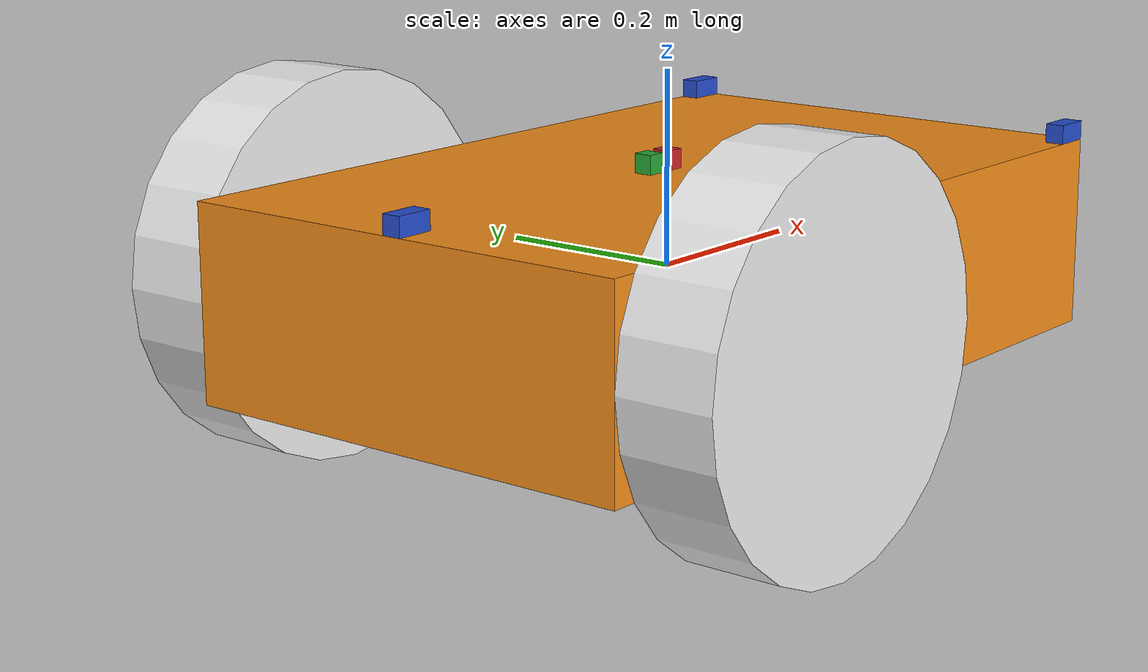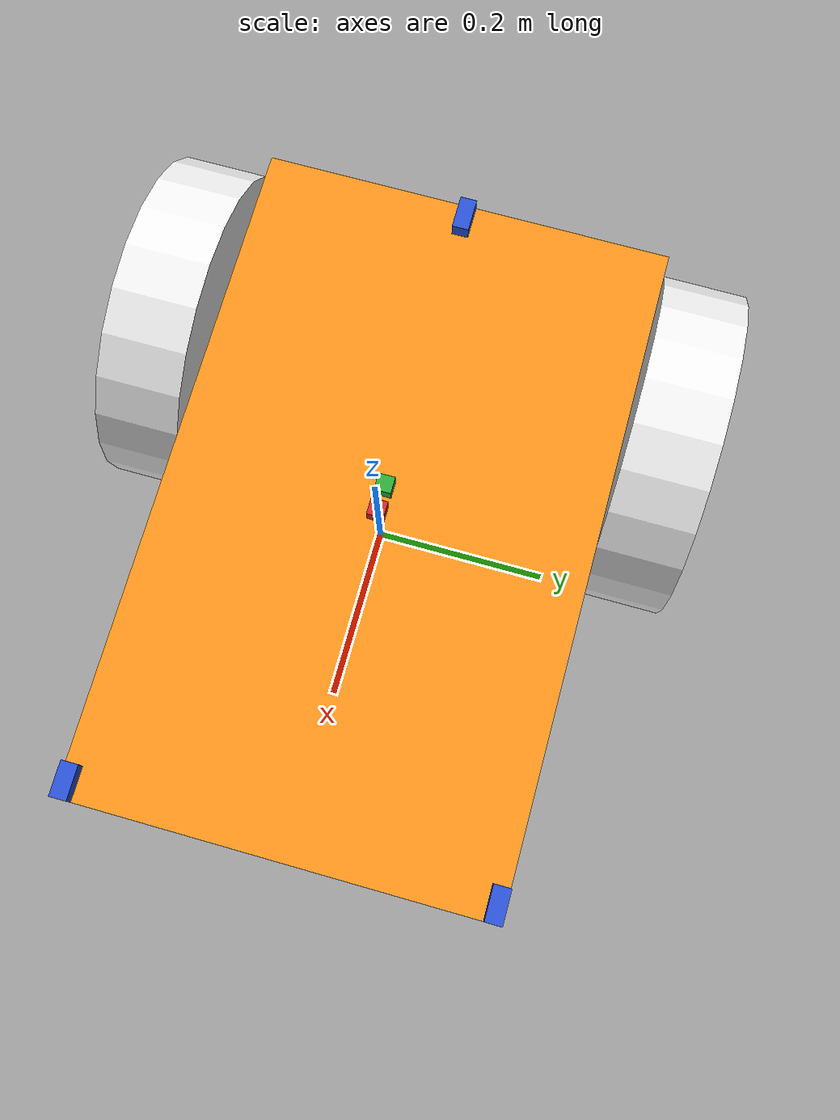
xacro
<?xml version="1.0"?>
<robot xmlns:xacro="http://www.ros.org/wiki/xacro" name="demo_robot">

	<xacro:property name="bodylen" value="0.8"/>
	<xacro:property name="bodywid" value="0.5"/>
	<xacro:property name="bodyhgt" value="0.2"/>
	<xacro:property name="bodymass" value="5"/>

	<xacro:property name="wheelhgt" value="0.1"/>
	<xacro:property name="wheelrad" value="0.2"/>
	<xacro:property name="wheelmass" value="1"/>

	<xacro:property name="castormass" value="1" />
	<xacro:property name="castorrad" value="${wheelrad - (bodyhgt/2)}" />

	<xacro:property name="cameralen" value="0.04" />
	<xacro:property name="camerawid" value="0.02" />
	<xacro:property name="camerahgt" value="0.02" />
	<xacro:property name="cameramass" value="0.05" />

	<xacro:property name="laserlen" value="0.02" />
	<xacro:property name="laserwid" value="0.02" />
	<xacro:property name="laserhgt" value="0.02" />
	<xacro:property name="lasermass" value="0.05" />

	<xacro:property name="imulen" value="0.02" />
	<xacro:property name="imuwid" value="0.02" />
	<xacro:property name="imuhgt" value="0.02" />
	<xacro:property name="imumass" value="0.02" />

	<xacro:include filename="$(find demo_description)/urdf/materials.xacro" />

	<xacro:macro name="body_geometry">
		<geometry>
			<box size="${bodylen} ${bodywid} ${bodyhgt}"/>
		</geometry>
	</xacro:macro>

	<xacro:macro name="wheel_geometry">
		<geometry>
			<cylinder radius="${wheelrad}" length="${wheelhgt}" />
		</geometry>
	</xacro:macro>

	<xacro:macro name="castor_geometry">
		<geometry>
			<sphere radius="${castorrad}" />
		</geometry>
	</xacro:macro>

	<xacro:macro name="camera_geometry">
		<geometry>
			<box size="${cameralen} ${camerawid} ${camerahgt}" />
		</geometry>
	</xacro:macro>

	<xacro:macro name="laser_geometry">
		<geometry>
			<box size="${laserlen} ${laserwid} ${laserhgt}" />
		</geometry>
	</xacro:macro>

	<xacro:macro name="imu_geometry">
		<geometry>
			<box size="${imulen} ${imuwid} ${imuhgt}" />
		</geometry>
	</xacro:macro>

	<link name="base_link">
	</link>

	<link name="chassis">
		<inertial>
			<mass value="${bodymass}"/>
			<inertia
				ixx="${bodymass * ((bodyhgt*bodyhgt)+(bodylen*bodylen)) / 12}"
				iyy="${bodymass * ((bodyhgt*bodyhgt)+(bodywid*bodywid)) / 12}"
				izz="${bodymass * ((bodylen*bodylen)+(bodywid*bodywid)) / 12}"
				ixy="0"
				ixz="0"
				iyz="0" />
		</inertial>
		<visual>
			<xacro:body_geometry/>
			<material name="orange"/>
		</visual>
		<collision>
			<xacro:body_geometry/>
		</collision>
	</link>

	<joint name="base_joint" type="fixed">
		<parent link="base_link"/>
		<child link="chassis" />
	</joint>

	<xacro:macro name="wheel_link_n_joint" params="prefix reflect">
		<link name="${prefix}_wheel">
			<inertial>
				<mass value="${wheelmass}" />
				<inertia
					ixx="${wheelmass * ((3*wheelrad*wheelrad) + (wheelhgt*wheelhgt)) / 12}"
					iyy="${wheelmass * ((3*wheelrad*wheelrad) + (wheelhgt*wheelhgt)) / 12}"
					izz="${wheelmass * wheelrad * wheelrad / 2}"
					ixy="0"
					ixz="0"
					iyz="0" />
			</inertial>
			<visual>
				<xacro:wheel_geometry />
				<material name="white" />
			</visual>
			<collision>
				<xacro:wheel_geometry />
			</collision>
		</link>
		<joint name="${prefix}_wheel_joint" type="continuous">
			<origin xyz="${-1 * bodylen/4} ${reflect * ((bodywid/2) + (wheelhgt/2))} 0" rpy="${-1*pi/2} 0 0"/>
			<parent link="chassis" />
			<child link="${prefix}_wheel"/>
			<axis xyz="0 0 1" />
		</joint>
	</xacro:macro>
	<xacro:wheel_link_n_joint prefix="left" reflect="1" />
	<xacro:wheel_link_n_joint prefix="right" reflect="-1" />

	<link name="castor_wheel">
		<inertial>
			<mass value="${castormass}" />
			<xacro:property name="castor_MOI" value="${2 * castormass * castorrad*castorrad/5}" />
			<inertia
				ixx="${castor_MOI}"
				iyy="${castor_MOI}"
				izz="${castor_MOI}"
				ixy="0"
				ixz="0"
				iyz="0" />
		</inertial>
		<visual>
			<xacro:castor_geometry />
			<material name="white" />
		</visual>
		<collision>
			<xacro:castor_geometry />
		</collision>
	</link>
	<joint name="castor_joint" type="fixed">
		<origin xyz="${bodylen/4} 0 ${-1 * bodyhgt/2}" />
		<parent link="chassis" />
		<child link="castor_wheel" />
	</joint>

	<xacro:macro name="front_camera_n_joint" params="prefix reflect">
		<link name="${prefix}_camera">
			<inertial>
				<mass value="${cameramass}" />
				<inertia
					ixx="${cameramass * ((camerahgt*camerahgt)+(cameralen*cameralen)) / 12}"
					iyy="${cameramass * ((camerahgt*camerahgt)+(camerawid*camerawid)) / 12}"
					izz="${cameramass * ((cameralen*cameralen)+(camerawid*camerawid)) / 12}"
					ixy="0"
					ixz="0"
					iyz="0"
				/>
			</inertial>
			<visual>
				<xacro:camera_geometry />
				<material name="blue" />
			</visual>
			<collision>
				<xacro:camera_geometry />
			</collision>
		</link>
		<joint name="${prefix}_camera_joint" type="fixed">
			<origin xyz="${(bodylen/2) - (cameralen/2)} ${reflect*((bodywid/2)-(camerawid/2))} ${(bodyhgt/2)+(camerahgt/2)}" />
			<parent link="chassis" />
			<child link="${prefix}_camera" />
		</joint>
	</xacro:macro>

	<xacro:front_camera_n_joint prefix="left" reflect="1" />
	<xacro:front_camera_n_joint prefix="right" reflect="-1" />

	<link name="back_camera">
		<inertial>
			<mass value="${cameramass}" />
			<inertia
				ixx="${cameramass * ((camerahgt*camerahgt)+(cameralen*cameralen)) / 12}"
				iyy="${cameramass * ((camerahgt*camerahgt)+(camerawid*camerawid)) / 12}"
				izz="${cameramass * ((cameralen*cameralen)+(camerawid*camerawid)) / 12}"
				ixy="0"
				ixz="0"
				iyz="0"
			/>
		</inertial>
		<visual>
			<xacro:camera_geometry />
			<material name="blue" />
		</visual>
		<collision>
			<xacro:camera_geometry />
		</collision>
	</link>
	<joint name="back_camera_joint" type="fixed">
		<origin xyz="${-(bodylen/2) + (cameralen/2)} 0 ${(bodyhgt/2)+(camerahgt/2)}" rpy="0 0 ${pi}"/>
		<parent link="chassis" />
		<child link="back_camera" />
	</joint>

	<link name="laser_link">
		<inertial>
			<mass value="${lasermass}" />
			<inertia
				ixx="${lasermass * ((laserhgt*laserhgt)+(laserlen*laserlen)) / 12}"
				iyy="${lasermass * ((laserhgt*laserhgt)+(laserwid*laserwid)) / 12}"
				izz="${lasermass * ((laserlen*laserlen)+(laserwid*laserwid)) / 12}"
				ixy="0"
				ixz="0"
				iyz="0"
			/>
		</inertial>
		<visual>
			<xacro:laser_geometry />
			<material name="red" />
		</visual>
		<collision>
			<xacro:laser_geometry />
		</collision>
	</link>
	<joint name="laser_joint" type="fixed">
		<origin xyz="0 0 ${(bodyhgt/2)+(laserhgt/2)}" rpy="0 0 0"/>
		<parent link="chassis" />
		<child link="laser_link" />
	</joint>

	<link name="imu_link">
		<inertial>
			<mass value="${imumass}" />
			<inertia
				ixx="${imumass * ((imuhgt*imuhgt)+(imulen*imulen)) / 12}"
				iyy="${imumass * ((imuhgt*imuhgt)+(imuwid*imuwid)) / 12}"
				izz="${imumass * ((imulen*imulen)+(imuwid*imuwid)) / 12}"
				ixy="0"
				ixz="0"
				iyz="0"
			/>
		</inertial>
		<visual>
			<xacro:imu_geometry />
			<material name="green" />
		</visual>
		<collision>
			<xacro:imu_geometry />
		</collision>
	</link>
	<joint name="imu_joint" type="fixed">
		<origin xyz="${-(laserlen)-(imulen/2)} 0 ${(bodyhgt/2)+(imuhgt/2)}" rpy="0 0 0"/>
		<parent link="chassis" />
		<child link="imu_link" />
	</joint>

	<xacro:include filename="$(find demo_description)/urdf/gazebo.xacro" />
	<xacro:include filename="$(find demo_description)/urdf/transmissions.xacro" />
</robot>
